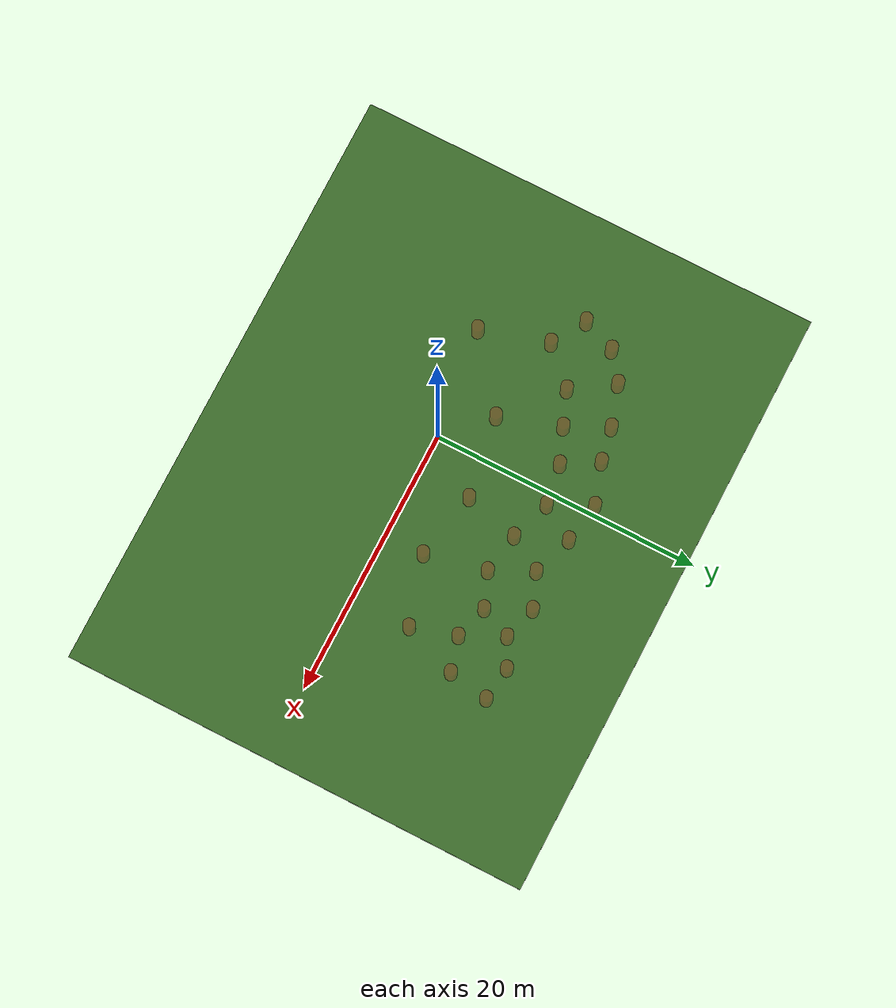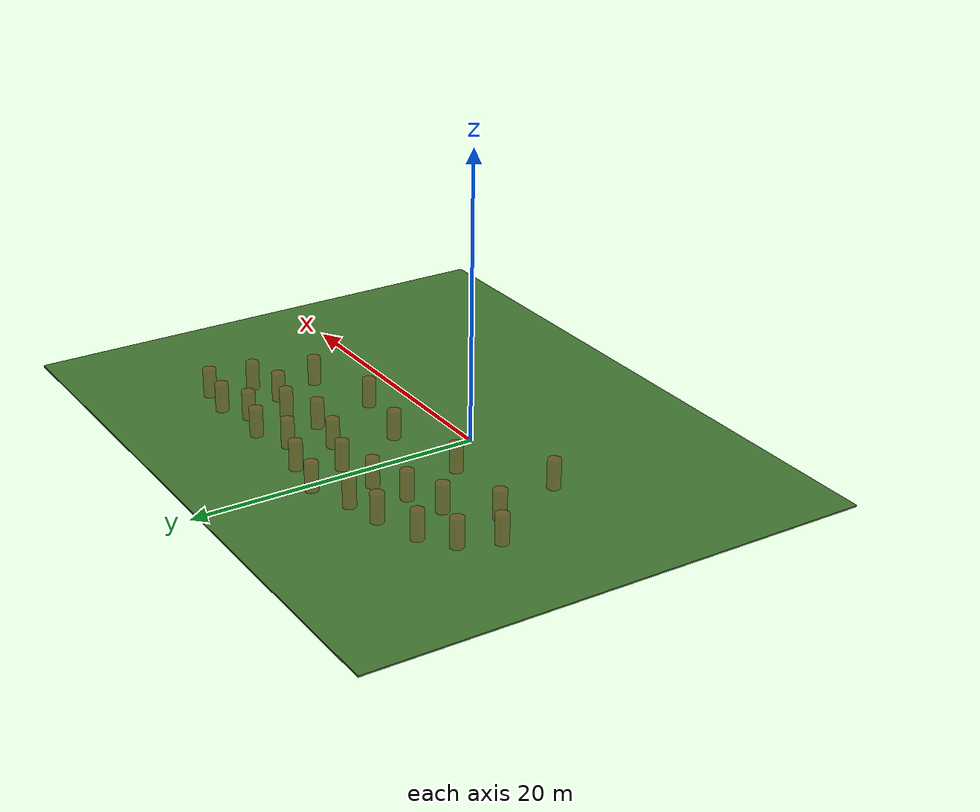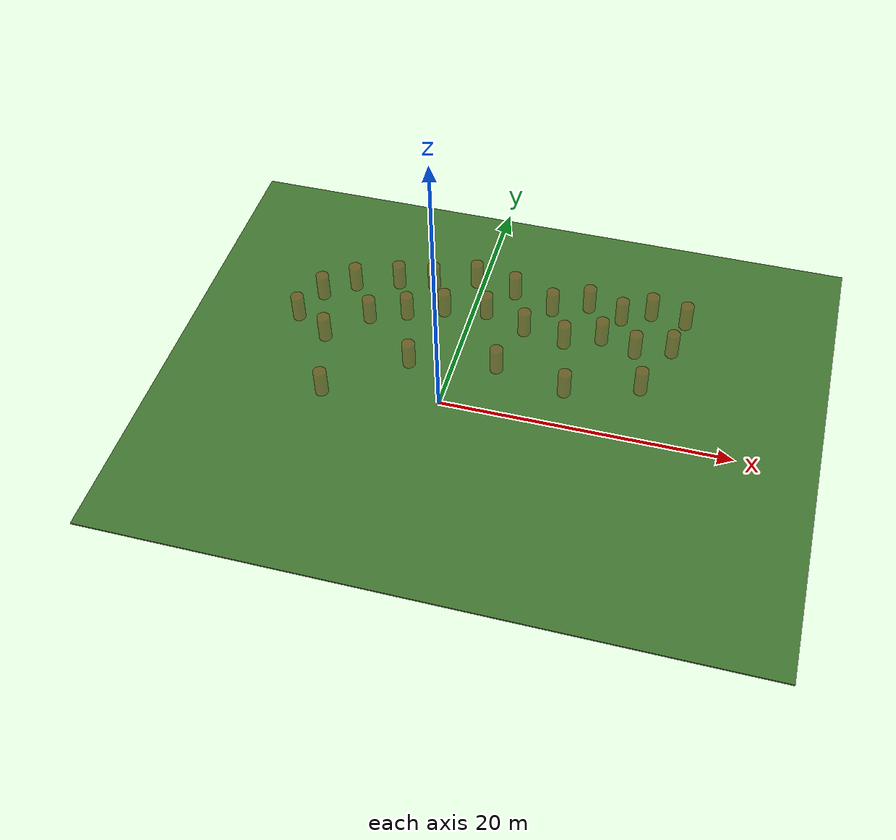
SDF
<sdf version="1.6">
 <world name="medium_forest_goal_13_10_tree_visual_cylinder_collision">
  <shadows>0</shadows>
  <light name="sun" type="directional">
   <pose>0 0 20 0 0 0</pose>
   <diffuse>0.8 0.8 0.8 1</diffuse>
   <specular>0.2 0.2 0.2 1</specular>
   <attenuation>
    <range>1000</range>
    <constant>0.9</constant>
    <linear>0.01</linear>
    <quadratic>0.001</quadratic>
   </attenuation>
   <direction>-0.5 0.1 -0.9</direction>
  </light>
  <physics name="default_physics" default="1" type="ode">
   <max_step_size>0.005</max_step_size>
   <real_time_factor>1</real_time_factor>
   <real_time_update_rate>200</real_time_update_rate>
  </physics>
  <model name="ground">
   <static>1</static>
   <link name="link">
    <collision name="collision"><geometry><box><size>45 35 0.1</size></box></geometry></collision>
    <visual name="visual">
     <geometry><box><size>45 35 0.1</size></box></geometry>
     <material><ambient>0.25 0.45 0.18 1</ambient><diffuse>0.25 0.45 0.18 1</diffuse></material>
    </visual>
   </link>
   <pose>3 2 -0.05 0 0 0</pose>
  </model>
  <model name="tree_01_simple_collision">
   <static>1</static>
   <pose>-12.0 5.5 1.0 0 0 0.1</pose>
   <link name="link">
    <collision name="collision">
     <geometry><cylinder><radius>0.45</radius><length>2.0</length></cylinder></geometry>
    </collision>
    <visual name="debug_collision_visual">
     <geometry><cylinder><radius>0.45</radius><length>2.0</length></cylinder></geometry>
     <material><ambient>1 0 0 0.12</ambient><diffuse>1 0 0 0.12</diffuse></material>
     <transparency>0.85</transparency>
    </visual>
   </link>
  </model>
  <model name="tree_02_simple_collision">
   <static>1</static>
   <pose>-11.0 8.0 1.0 0 0 -0.3</pose>
   <link name="link">
    <collision name="collision">
     <geometry><cylinder><radius>0.45</radius><length>2.0</length></cylinder></geometry>
    </collision>
    <visual name="debug_collision_visual">
     <geometry><cylinder><radius>0.45</radius><length>2.0</length></cylinder></geometry>
     <material><ambient>1 0 0 0.12</ambient><diffuse>1 0 0 0.12</diffuse></material>
     <transparency>0.85</transparency>
    </visual>
   </link>
  </model>
  <model name="tree_03_simple_collision">
   <static>1</static>
   <pose>-9.5 4.0 1.0 0 0 0.4</pose>
   <link name="link">
    <collision name="collision">
     <geometry><cylinder><radius>0.45</radius><length>2.0</length></cylinder></geometry>
    </collision>
    <visual name="debug_collision_visual">
     <geometry><cylinder><radius>0.45</radius><length>2.0</length></cylinder></geometry>
     <material><ambient>1 0 0 0.12</ambient><diffuse>1 0 0 0.12</diffuse></material>
     <transparency>0.85</transparency>
    </visual>
   </link>
  </model>
  <model name="tree_04_simple_collision">
   <static>1</static>
   <pose>-9.0 9.5 1.0 0 0 -0.5</pose>
   <link name="link">
    <collision name="collision">
     <geometry><cylinder><radius>0.45</radius><length>2.0</length></cylinder></geometry>
    </collision>
    <visual name="debug_collision_visual">
     <geometry><cylinder><radius>0.45</radius><length>2.0</length></cylinder></geometry>
     <material><ambient>1 0 0 0.12</ambient><diffuse>1 0 0 0.12</diffuse></material>
     <transparency>0.85</transparency>
    </visual>
   </link>
  </model>
  <model name="tree_05_simple_collision">
   <static>1</static>
   <pose>-7.0 6.5 1.0 0 0 0.2</pose>
   <link name="link">
    <collision name="collision">
     <geometry><cylinder><radius>0.45</radius><length>2.0</length></cylinder></geometry>
    </collision>
    <visual name="debug_collision_visual">
     <geometry><cylinder><radius>0.45</radius><length>2.0</length></cylinder></geometry>
     <material><ambient>1 0 0 0.12</ambient><diffuse>1 0 0 0.12</diffuse></material>
     <transparency>0.85</transparency>
    </visual>
   </link>
  </model>
  <model name="tree_06_simple_collision">
   <static>1</static>
   <pose>-6.0 10.5 1.0 0 0 0.6</pose>
   <link name="link">
    <collision name="collision">
     <geometry><cylinder><radius>0.45</radius><length>2.0</length></cylinder></geometry>
    </collision>
    <visual name="debug_collision_visual">
     <geometry><cylinder><radius>0.45</radius><length>2.0</length></cylinder></geometry>
     <material><ambient>1 0 0 0.12</ambient><diffuse>1 0 0 0.12</diffuse></material>
     <transparency>0.85</transparency>
    </visual>
   </link>
  </model>
  <model name="tree_07_simple_collision">
   <static>1</static>
   <pose>-4.5 7.5 1.0 0 0 -0.2</pose>
   <link name="link">
    <collision name="collision">
     <geometry><cylinder><radius>0.45</radius><length>2.0</length></cylinder></geometry>
    </collision>
    <visual name="debug_collision_visual">
     <geometry><cylinder><radius>0.45</radius><length>2.0</length></cylinder></geometry>
     <material><ambient>1 0 0 0.12</ambient><diffuse>1 0 0 0.12</diffuse></material>
     <transparency>0.85</transparency>
    </visual>
   </link>
  </model>
  <model name="tree_08_simple_collision">
   <static>1</static>
   <pose>-3.5 11.0 1.0 0 0 0.4</pose>
   <link name="link">
    <collision name="collision">
     <geometry><cylinder><radius>0.45</radius><length>2.0</length></cylinder></geometry>
    </collision>
    <visual name="debug_collision_visual">
     <geometry><cylinder><radius>0.45</radius><length>2.0</length></cylinder></geometry>
     <material><ambient>1 0 0 0.12</ambient><diffuse>1 0 0 0.12</diffuse></material>
     <transparency>0.85</transparency>
    </visual>
   </link>
  </model>
  <model name="tree_09_simple_collision">
   <static>1</static>
   <pose>-2.0 8.5 1.0 0 0 -0.1</pose>
   <link name="link">
    <collision name="collision">
     <geometry><cylinder><radius>0.45</radius><length>2.0</length></cylinder></geometry>
    </collision>
    <visual name="debug_collision_visual">
     <geometry><cylinder><radius>0.45</radius><length>2.0</length></cylinder></geometry>
     <material><ambient>1 0 0 0.12</ambient><diffuse>1 0 0 0.12</diffuse></material>
     <transparency>0.85</transparency>
    </visual>
   </link>
  </model>
  <model name="tree_10_simple_collision">
   <static>1</static>
   <pose>-0.5 12.0 1.0 0 0 0.5</pose>
   <link name="link">
    <collision name="collision">
     <geometry><cylinder><radius>0.45</radius><length>2.0</length></cylinder></geometry>
    </collision>
    <visual name="debug_collision_visual">
     <geometry><cylinder><radius>0.45</radius><length>2.0</length></cylinder></geometry>
     <material><ambient>1 0 0 0.12</ambient><diffuse>1 0 0 0.12</diffuse></material>
     <transparency>0.85</transparency>
    </visual>
   </link>
  </model>
  <model name="tree_11_simple_collision">
   <static>1</static>
   <pose>1.0 9.0 1.0 0 0 -0.4</pose>
   <link name="link">
    <collision name="collision">
     <geometry><cylinder><radius>0.45</radius><length>2.0</length></cylinder></geometry>
    </collision>
    <visual name="debug_collision_visual">
     <geometry><cylinder><radius>0.45</radius><length>2.0</length></cylinder></geometry>
     <material><ambient>1 0 0 0.12</ambient><diffuse>1 0 0 0.12</diffuse></material>
     <transparency>0.85</transparency>
    </visual>
   </link>
  </model>
  <model name="tree_12_simple_collision">
   <static>1</static>
   <pose>2.5 11.5 1.0 0 0 0.2</pose>
   <link name="link">
    <collision name="collision">
     <geometry><cylinder><radius>0.45</radius><length>2.0</length></cylinder></geometry>
    </collision>
    <visual name="debug_collision_visual">
     <geometry><cylinder><radius>0.45</radius><length>2.0</length></cylinder></geometry>
     <material><ambient>1 0 0 0.12</ambient><diffuse>1 0 0 0.12</diffuse></material>
     <transparency>0.85</transparency>
    </visual>
   </link>
  </model>
  <model name="tree_13_simple_collision">
   <static>1</static>
   <pose>4.0 8.0 1.0 0 0 0.6</pose>
   <link name="link">
    <collision name="collision">
     <geometry><cylinder><radius>0.45</radius><length>2.0</length></cylinder></geometry>
    </collision>
    <visual name="debug_collision_visual">
     <geometry><cylinder><radius>0.45</radius><length>2.0</length></cylinder></geometry>
     <material><ambient>1 0 0 0.12</ambient><diffuse>1 0 0 0.12</diffuse></material>
     <transparency>0.85</transparency>
    </visual>
   </link>
  </model>
  <model name="tree_14_simple_collision">
   <static>1</static>
   <pose>5.5 10.5 1.0 0 0 -0.3</pose>
   <link name="link">
    <collision name="collision">
     <geometry><cylinder><radius>0.45</radius><length>2.0</length></cylinder></geometry>
    </collision>
    <visual name="debug_collision_visual">
     <geometry><cylinder><radius>0.45</radius><length>2.0</length></cylinder></geometry>
     <material><ambient>1 0 0 0.12</ambient><diffuse>1 0 0 0.12</diffuse></material>
     <transparency>0.85</transparency>
    </visual>
   </link>
  </model>
  <model name="tree_15_simple_collision">
   <static>1</static>
   <pose>7.0 7.5 1.0 0 0 0.1</pose>
   <link name="link">
    <collision name="collision">
     <geometry><cylinder><radius>0.45</radius><length>2.0</length></cylinder></geometry>
    </collision>
    <visual name="debug_collision_visual">
     <geometry><cylinder><radius>0.45</radius><length>2.0</length></cylinder></geometry>
     <material><ambient>1 0 0 0.12</ambient><diffuse>1 0 0 0.12</diffuse></material>
     <transparency>0.85</transparency>
    </visual>
   </link>
  </model>
  <model name="tree_16_simple_collision">
   <static>1</static>
   <pose>8.0 11.5 1.0 0 0 -0.5</pose>
   <link name="link">
    <collision name="collision">
     <geometry><cylinder><radius>0.45</radius><length>2.0</length></cylinder></geometry>
    </collision>
    <visual name="debug_collision_visual">
     <geometry><cylinder><radius>0.45</radius><length>2.0</length></cylinder></geometry>
     <material><ambient>1 0 0 0.12</ambient><diffuse>1 0 0 0.12</diffuse></material>
     <transparency>0.85</transparency>
    </visual>
   </link>
  </model>
  <model name="tree_17_simple_collision">
   <static>1</static>
   <pose>9.5 8.5 1.0 0 0 0.3</pose>
   <link name="link">
    <collision name="collision">
     <geometry><cylinder><radius>0.45</radius><length>2.0</length></cylinder></geometry>
    </collision>
    <visual name="debug_collision_visual">
     <geometry><cylinder><radius>0.45</radius><length>2.0</length></cylinder></geometry>
     <material><ambient>1 0 0 0.12</ambient><diffuse>1 0 0 0.12</diffuse></material>
     <transparency>0.85</transparency>
    </visual>
   </link>
  </model>
  <model name="tree_18_simple_collision">
   <static>1</static>
   <pose>10.5 10.8 1.0 0 0 0.5</pose>
   <link name="link">
    <collision name="collision">
     <geometry><cylinder><radius>0.45</radius><length>2.0</length></cylinder></geometry>
    </collision>
    <visual name="debug_collision_visual">
     <geometry><cylinder><radius>0.45</radius><length>2.0</length></cylinder></geometry>
     <material><ambient>1 0 0 0.12</ambient><diffuse>1 0 0 0.12</diffuse></material>
     <transparency>0.85</transparency>
    </visual>
   </link>
  </model>
  <model name="tree_19_simple_collision">
   <static>1</static>
   <pose>12.0 7.8 1.0 0 0 -0.2</pose>
   <link name="link">
    <collision name="collision">
     <geometry><cylinder><radius>0.45</radius><length>2.0</length></cylinder></geometry>
    </collision>
    <visual name="debug_collision_visual">
     <geometry><cylinder><radius>0.45</radius><length>2.0</length></cylinder></geometry>
     <material><ambient>1 0 0 0.12</ambient><diffuse>1 0 0 0.12</diffuse></material>
     <transparency>0.85</transparency>
    </visual>
   </link>
  </model>
  <model name="tree_20_simple_collision">
   <static>1</static>
   <pose>12.5 11.8 1.0 0 0 0.4</pose>
   <link name="link">
    <collision name="collision">
     <geometry><cylinder><radius>0.45</radius><length>2.0</length></cylinder></geometry>
    </collision>
    <visual name="debug_collision_visual">
     <geometry><cylinder><radius>0.45</radius><length>2.0</length></cylinder></geometry>
     <material><ambient>1 0 0 0.12</ambient><diffuse>1 0 0 0.12</diffuse></material>
     <transparency>0.85</transparency>
    </visual>
   </link>
  </model>
  <model name="tree_21_simple_collision">
   <static>1</static>
   <pose>14.5 8.5 1.0 0 0 0.1</pose>
   <link name="link">
    <collision name="collision">
     <geometry><cylinder><radius>0.45</radius><length>2.0</length></cylinder></geometry>
    </collision>
    <visual name="debug_collision_visual">
     <geometry><cylinder><radius>0.45</radius><length>2.0</length></cylinder></geometry>
     <material><ambient>1 0 0 0.12</ambient><diffuse>1 0 0 0.12</diffuse></material>
     <transparency>0.85</transparency>
    </visual>
   </link>
  </model>
  <model name="tree_22_simple_collision">
   <static>1</static>
   <pose>15.0 11.5 1.0 0 0 -0.4</pose>
   <link name="link">
    <collision name="collision">
     <geometry><cylinder><radius>0.45</radius><length>2.0</length></cylinder></geometry>
    </collision>
    <visual name="debug_collision_visual">
     <geometry><cylinder><radius>0.45</radius><length>2.0</length></cylinder></geometry>
     <material><ambient>1 0 0 0.12</ambient><diffuse>1 0 0 0.12</diffuse></material>
     <transparency>0.85</transparency>
    </visual>
   </link>
  </model>
  <model name="tree_23_simple_collision">
   <static>1</static>
   <pose>-8.0 -1.0 1.0 0 0 0.7</pose>
   <link name="link">
    <collision name="collision">
     <geometry><cylinder><radius>0.45</radius><length>2.0</length></cylinder></geometry>
    </collision>
    <visual name="debug_collision_visual">
     <geometry><cylinder><radius>0.45</radius><length>2.0</length></cylinder></geometry>
     <material><ambient>1 0 0 0.12</ambient><diffuse>1 0 0 0.12</diffuse></material>
     <transparency>0.85</transparency>
    </visual>
   </link>
  </model>
  <model name="tree_24_simple_collision">
   <static>1</static>
   <pose>-3.0 3.0 1.0 0 0 -0.2</pose>
   <link name="link">
    <collision name="collision">
     <geometry><cylinder><radius>0.45</radius><length>2.0</length></cylinder></geometry>
    </collision>
    <visual name="debug_collision_visual">
     <geometry><cylinder><radius>0.45</radius><length>2.0</length></cylinder></geometry>
     <material><ambient>1 0 0 0.12</ambient><diffuse>1 0 0 0.12</diffuse></material>
     <transparency>0.85</transparency>
    </visual>
   </link>
  </model>
  <model name="tree_25_simple_collision">
   <static>1</static>
   <pose>3.0 4.0 1.0 0 0 0.3</pose>
   <link name="link">
    <collision name="collision">
     <geometry><cylinder><radius>0.45</radius><length>2.0</length></cylinder></geometry>
    </collision>
    <visual name="debug_collision_visual">
     <geometry><cylinder><radius>0.45</radius><length>2.0</length></cylinder></geometry>
     <material><ambient>1 0 0 0.12</ambient><diffuse>1 0 0 0.12</diffuse></material>
     <transparency>0.85</transparency>
    </visual>
   </link>
  </model>
  <model name="tree_26_simple_collision">
   <static>1</static>
   <pose>8.0 3.0 1.0 0 0 -0.5</pose>
   <link name="link">
    <collision name="collision">
     <geometry><cylinder><radius>0.45</radius><length>2.0</length></cylinder></geometry>
    </collision>
    <visual name="debug_collision_visual">
     <geometry><cylinder><radius>0.45</radius><length>2.0</length></cylinder></geometry>
     <material><ambient>1 0 0 0.12</ambient><diffuse>1 0 0 0.12</diffuse></material>
     <transparency>0.85</transparency>
    </visual>
   </link>
  </model>
  <model name="tree_27_simple_collision">
   <static>1</static>
   <pose>13.0 4.5 1.0 0 0 0.2</pose>
   <link name="link">
    <collision name="collision">
     <geometry><cylinder><radius>0.45</radius><length>2.0</length></cylinder></geometry>
    </collision>
    <visual name="debug_collision_visual">
     <geometry><cylinder><radius>0.45</radius><length>2.0</length></cylinder></geometry>
     <material><ambient>1 0 0 0.12</ambient><diffuse>1 0 0 0.12</diffuse></material>
     <transparency>0.85</transparency>
    </visual>
   </link>
  </model>
 </world>
</sdf>
